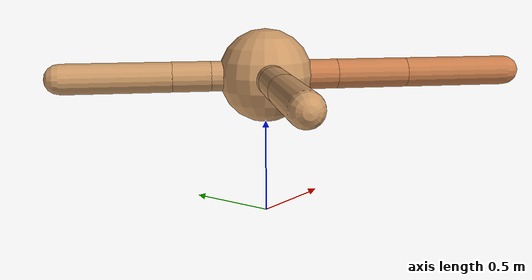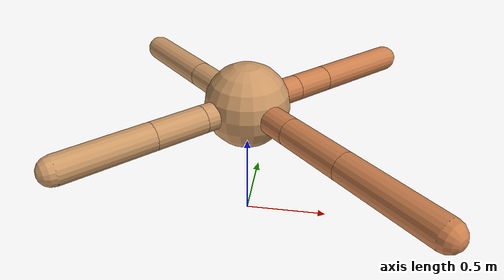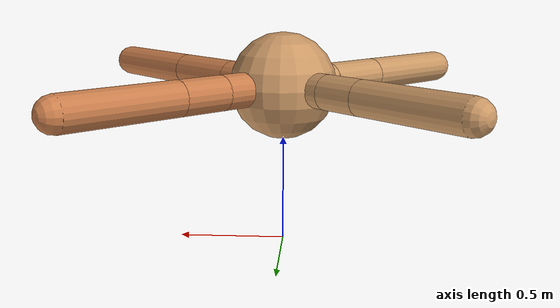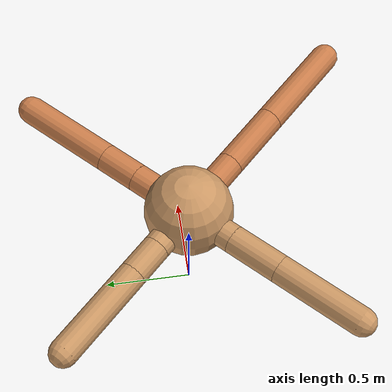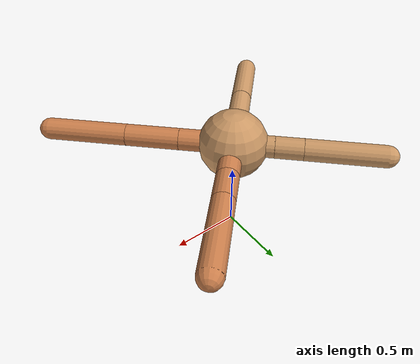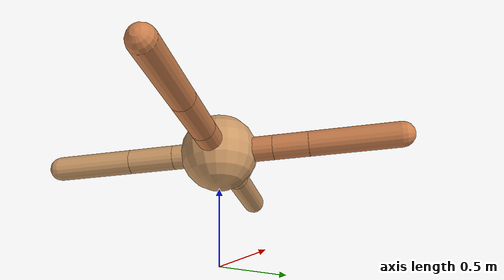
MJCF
<mujoco model="ant">
  <compiler angle="degree" coordinate="local" inertiafromgeom="true" />
  <option integrator="RK4" timestep="0.01" />
  <custom>
    <numeric data="0.0 0.0 0.55 1.0 0.0 0.0 0.0 0.0 1.0 0.0 -1.0 0.0 -1.0 0.0 1.0" name="init_qpos" />
  </custom>
  <default>
    <joint armature="1" damping="1" limited="true" />
    <geom conaffinity="0" condim="3" density="5.0" friction="1.5 0.1 0.1" margin="0.01" rgba="0.8 0.6 0.4 1" />
  </default>
  <worldbody>
    <body name="torso" pos="0 0 0.75">
      <geom name="torso_geom" pos="0 0 0" size="0.25" type="sphere" />

      <body name="front_left_leg" pos="0 0 0">
        <geom fromto="0.0 0.0 0.0 0.2541015748337326 0.2541015748337326 0.0" name="aux_1_geom" size="0.08" type="capsule" rgba=".8 .5 .3 1" />
        <body name="aux_1" pos="0.2541015748337326 0.2541015748337326 0.0">
          <joint axis="0 0 1" name="hip_1" pos="0.0 0.0 0.0" range="-40 40" type="hinge" />
          <geom fromto="0.0 0.0 0.0 0.16087960506482837 0.16087960506482837 0.0" name="left_leg_geom" size="0.08" type="capsule" rgba=".8 .5 .3 1" />
          <body pos="0.16087960506482837 0.16087960506482837 0.0" name="front_left_foot">
            <joint axis="-1 1 0" name="ankle_1" pos="0.0 0.0 0.0" range="30 100" type="hinge" />
            <geom fromto="0.0 0.0 0.0 0.39706004565014763 0.39706004565014763 0.0" name="left_ankle_geom" size="0.08" type="capsule" rgba=".8 .5 .3 1" />
          </body>
        </body>
      </body>
      <body name="front_right_leg" pos="0 0 0">
        <geom fromto="0.0 0.0 0.0 -0.20697613674628249 0.20697613674628249 0.0" name="aux_2_geom" size="0.08" type="capsule" />
        <body name="aux_2" pos="-0.20697613674628249 0.20697613674628249 0.0">
          <joint axis="0 0 1" name="hip_2" pos="0.0 0.0 0.0" range="-40 40" type="hinge" />
          <geom fromto="0.0 0.0 0.0 -0.1431993455868204 0.1431993455868204 0.0" name="right_leg_geom" size="0.08" type="capsule" />
          <body pos="-0.1431993455868204 0.1431993455868204 0.0" name="front_right_foot">
            <joint axis="1 1 0" name="ankle_2" pos="0.0 0.0 0.0" range="-100 -30" type="hinge" />
            <geom fromto="0.0 0.0 0.0 -0.4031790301393855 0.4031790301393855 0.0" name="right_ankle_geom" size="0.08" type="capsule" />
          </body>
        </body>
      </body>
      <body name="left_back_leg" pos="0 0 0">
        <geom fromto="0.0 0.0 0.0 -0.2148863341204873 -0.2148863341204873 0.0" name="aux_3_geom" size="0.08" type="capsule" />
        <body name="aux_3" pos="-0.2148863341204873 -0.2148863341204873 0.0">
          <joint axis="0 0 1" name="hip_3" pos="0.0 0.0 0.0" range="-40 40" type="hinge" />
          <geom fromto="0.0 0.0 0.0 -0.21426791838067372 -0.21426791838067372 0.0" name="back_leg_geom" size="0.08" type="capsule" />
          <body pos="-0.21426791838067372 -0.21426791838067372 0.0" name="left_back_foot">
            <joint axis="-1 1 0" name="ankle_3" pos="0.0 0.0 0.0" range="-100 -30" type="hinge" />
            <geom fromto="0.0 0.0 0.0 -0.3672089395399842 -0.3672089395399842 0.0" name="third_ankle_geom" size="0.08" type="capsule" />
          </body>
        </body>
      </body>
      <body name="right_back_leg" pos="0 0 0">
        <geom fromto="0.0 0.0 0.0 0.27502705687306783 -0.27502705687306783 0.0" name="aux_4_geom" size="0.08" type="capsule" rgba=".8 .5 .3 1" />
        <body name="aux_4" pos="0.27502705687306783 -0.27502705687306783 0.0">
          <joint axis="0 0 1" name="hip_4" pos="0.0 0.0 0.0" range="-40 40" type="hinge" />
          <geom fromto="0.0 0.0 0.0 0.2755079458605712 -0.2755079458605712 0.0" name="rightback_leg_geom" size="0.08" type="capsule" rgba=".8 .5 .3 1" />
          <body pos="0.2755079458605712 -0.2755079458605712 0.0" name="right_back_foot">
            <joint axis="1 1 0" name="ankle_4" pos="0.0 0.0 0.0" range="30 100" type="hinge" />
            <geom fromto="0.0 0.0 0.0 0.4112778359884609 -0.4112778359884609 0.0" name="fourth_ankle_geom" size="0.08" type="capsule" rgba=".8 .5 .3 1" />
          </body>
        </body>
      </body>
    </body>
  </worldbody>
  <actuator>
    <motor ctrllimited="true" ctrlrange="-1.0 1.0" joint="hip_4" gear="150" />
    <motor ctrllimited="true" ctrlrange="-1.0 1.0" joint="ankle_4" gear="150" />
    <motor ctrllimited="true" ctrlrange="-1.0 1.0" joint="hip_1" gear="150" />
    <motor ctrllimited="true" ctrlrange="-1.0 1.0" joint="ankle_1" gear="150" />
    <motor ctrllimited="true" ctrlrange="-1.0 1.0" joint="hip_2" gear="150" />
    <motor ctrllimited="true" ctrlrange="-1.0 1.0" joint="ankle_2" gear="150" />
    <motor ctrllimited="true" ctrlrange="-1.0 1.0" joint="hip_3" gear="150" />
    <motor ctrllimited="true" ctrlrange="-1.0 1.0" joint="ankle_3" gear="150" />
  </actuator>
</mujoco>
